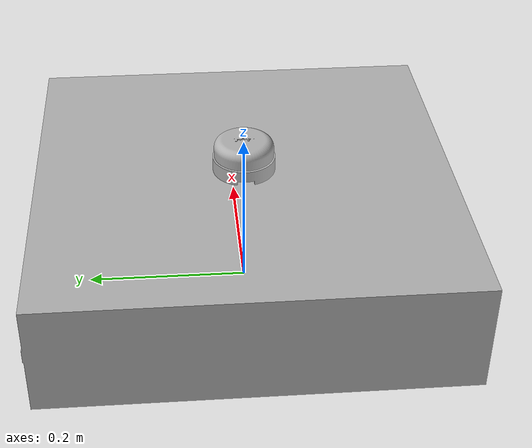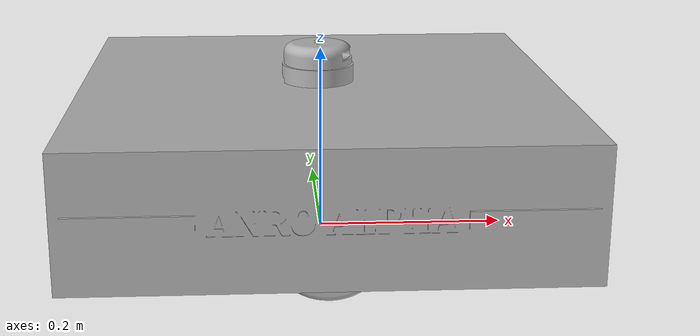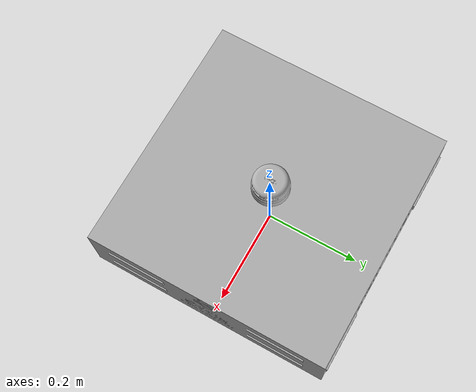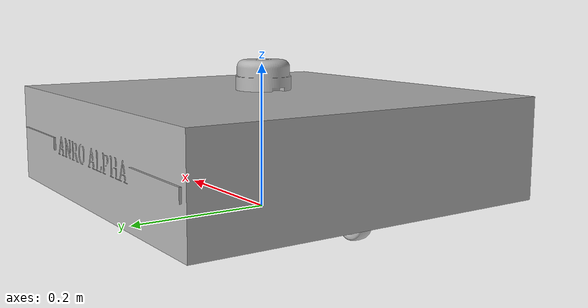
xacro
<?xml version="1.0" ?>
<robot name="offix" xmlns:xacro="http://www.ros.org/wiki/xacro">

<xacro:include filename="$(find offix_description)/urdf/materials.xacro" />

<xacro:include filename="$(find offix_description)/urdf/offix.trans" />

<xacro:include filename="$(find offix_description)/gazebo/offix_materials.gazebo" />
<xacro:include filename="$(find offix_description)/gazebo/offix_physics.gazebo" />
<xacro:include filename="$(find offix_description)/gazebo/offix_plugins.gazebo" />

<link name="base_link">
  <inertial>
    <origin xyz="-0.0010585559374129971 1.1603861137388093e-06 0.08498069848038411" rpy="0 0 0"/>
    <mass value="31.25262498334549"/>
    <inertia ixx="0.781964" iyy="0.82821" izz="1.452354" ixy="-3e-06" iyz="-0.0" ixz="-0.000401"/>
  </inertial>
  <visual>
    <origin xyz="0 0 0" rpy="0 0 0"/>
    <geometry>
      <mesh filename="package://offix_description/meshes/base_link.stl" scale="0.001 0.001 0.001"/>
    </geometry>
    <material name="silver"/>
  </visual>
  <collision>
    <origin xyz="0 0 0" rpy="0 0 0"/>
    <geometry>
      <mesh filename="package://offix_description/meshes/base_link.stl" scale="0.001 0.001 0.001"/>
    </geometry>
  </collision>
</link>

<link name="rwheel_1">
  <inertial>
    <origin xyz="1.2851332784882472e-07 -0.016169930670460436 -4.5638473018111414e-07" rpy="0 0 0"/>
    <mass value="2.2778437947081898"/>
    <inertia ixx="0.002435" iyy="0.004444" izz="0.002435" ixy="-0.0" iyz="0.0" ixz="0.0"/>
  </inertial>
  <visual>
    <origin xyz="0.002452 0.1805 -0.06" rpy="0 0 0"/>
    <geometry>
      <mesh filename="package://offix_description/meshes/rwheel_1.stl" scale="0.001 0.001 0.001"/>
    </geometry>
    <material name="silver"/>
  </visual>
  <collision>
    <origin xyz="0.002452 0.1805 -0.06" rpy="0 0 0"/>
    <geometry>
      <mesh filename="package://offix_description/meshes/rwheel_1.stl" scale="0.001 0.001 0.001"/>
    </geometry>
  </collision>
</link>

<link name="lwheel_1">
  <inertial>
    <origin xyz="1.285133202481338e-07 0.016170129363836494 -4.5638473017417525e-07" rpy="0 0 0"/>
    <mass value="2.2778437947081898"/>
    <inertia ixx="0.002435" iyy="0.004444" izz="0.002435" ixy="0.0" iyz="-0.0" ixz="-0.0"/>
  </inertial>
  <visual>
    <origin xyz="0.002452 -0.1805 -0.06" rpy="0 0 0"/>
    <geometry>
      <mesh filename="package://offix_description/meshes/lwheel_1.stl" scale="0.001 0.001 0.001"/>
    </geometry>
    <material name="silver"/>
  </visual>
  <collision>
    <origin xyz="0.002452 -0.1805 -0.06" rpy="0 0 0"/>
    <geometry>
      <mesh filename="package://offix_description/meshes/lwheel_1.stl" scale="0.001 0.001 0.001"/>
    </geometry>
  </collision>
</link>

<link name="cfront_1">
  <inertial>
    <origin xyz="-0.04434908440245111 0.029937027175028625 -0.02821046292883443" rpy="0 0 0"/>
    <mass value="0.3779052559820692"/>
    <inertia ixx="0.000199" iyy="0.000275" izz="0.000158" ixy="-0.0" iyz="-0.0" ixz="-7.9e-05"/>
  </inertial>
  <visual>
    <origin xyz="-0.202548 0.03 -0.069" rpy="0 0 0"/>
    <geometry>
      <mesh filename="package://offix_description/meshes/cfront_1.stl" scale="0.001 0.001 0.001"/>
    </geometry>
    <material name="silver"/>
  </visual>
  <collision>
    <origin xyz="-0.202548 0.03 -0.069" rpy="0 0 0"/>
    <geometry>
      <mesh filename="package://offix_description/meshes/cfront_1.stl" scale="0.001 0.001 0.001"/>
    </geometry>
  </collision>
</link>

<link name="cback_1">
  <inertial>
    <origin xyz="-0.04434908440245125 0.029937027175028625 -0.02821046292883443" rpy="0 0 0"/>
    <mass value="0.3779052559820692"/>
    <inertia ixx="0.000199" iyy="0.000275" izz="0.000158" ixy="-0.0" iyz="-0.0" ixz="-7.9e-05"/>
  </inertial>
  <visual>
    <origin xyz="0.147452 0.03 -0.069" rpy="0 0 0"/>
    <geometry>
      <mesh filename="package://offix_description/meshes/cback_1.stl" scale="0.001 0.001 0.001"/>
    </geometry>
    <material name="silver"/>
  </visual>
  <collision>
    <origin xyz="0.147452 0.03 -0.069" rpy="0 0 0"/>
    <geometry>
      <mesh filename="package://offix_description/meshes/cback_1.stl" scale="0.001 0.001 0.001"/>
    </geometry>
  </collision>
</link>

<link name="lidar_1">
  <inertial>
    <origin xyz="-0.0012345919983550641 -1.4730286323767533e-05 0.019298175843490056" rpy="0 0 0"/>
    <mass value="1.2982578743862112"/>
    <inertia ixx="0.000619" iyy="0.00059" izz="0.000863" ixy="0.0" iyz="0.0" ixz="1.7e-05"/>
  </inertial>
  <visual>
    <origin xyz="0.002452 -0.0 -0.163" rpy="0 0 0"/>
    <geometry>
      <mesh filename="package://offix_description/meshes/lidar_1.stl" scale="0.001 0.001 0.001"/>
    </geometry>
    <material name="silver"/>
  </visual>
  <collision>
    <origin xyz="0.002452 -0.0 -0.163" rpy="0 0 0"/>
    <geometry>
      <mesh filename="package://offix_description/meshes/lidar_1.stl" scale="0.001 0.001 0.001"/>
    </geometry>
  </collision>
</link>

<joint name="rjoint" type="continuous">
  <origin xyz="-0.002452 -0.1805 0.06" rpy="0 0 0"/>
  <parent link="base_link"/>
  <child link="rwheel_1"/>
  <axis xyz="-0.0 1.0 0.0"/>
</joint>

<joint name="ljoint" type="continuous">
  <origin xyz="-0.002452 0.1805 0.06" rpy="0 0 0"/>
  <parent link="base_link"/>
  <child link="lwheel_1"/>
  <axis xyz="-0.0 1.0 0.0"/>
</joint>

<joint name="cfjoint" type="fixed">
  <origin xyz="0.202548 -0.03 0.069" rpy="0 0 0"/>
  <parent link="base_link"/>
  <child link="cfront_1"/>
</joint>

<joint name="cbjoint" type="fixed">
  <origin xyz="-0.147452 -0.03 0.069" rpy="0 0 0"/>
  <parent link="base_link"/>
  <child link="cback_1"/>
</joint>

<joint name="lidjoint" type="fixed">
  <origin xyz="-0.002452 -0.0 0.165" rpy="0 0 0"/>
  <parent link="base_link"/>
  <child link="lidar_1"/>
</joint>

</robot>

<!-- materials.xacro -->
<robot name="offix" xmlns:xacro="http://www.ros.org/wiki/xacro" >

<material name="silver">
  <color rgba="0.700 0.700 0.700 1.000"/>
</material>

</robot>

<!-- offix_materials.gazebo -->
<robot name="offix" xmlns:xacro="http://www.ros.org/wiki/xacro" >

<xacro:property name="black_color" value="Gazebo/FlatBlack" />
<xacro:property name="grey_color" value="Gazebo/DarkGrey" />
<xacro:property name="white_color" value="Gazebo/White" />

<gazebo reference="base_link">
  <material>${black_color}</material>
</gazebo>

<gazebo reference="rwheel_1">
  <material>${grey_color}</material>
</gazebo>

<gazebo reference="lwheel_1">
  <material>${grey_color}</material>
</gazebo>

<gazebo reference="cfront_1">
  <material>${grey_color}</material>
</gazebo>

<gazebo reference="cback_1">
  <material>${grey_color}</material>
</gazebo>

<gazebo reference="lidar_1">
  <material>${white_color}</material>
</gazebo>

</robot>
